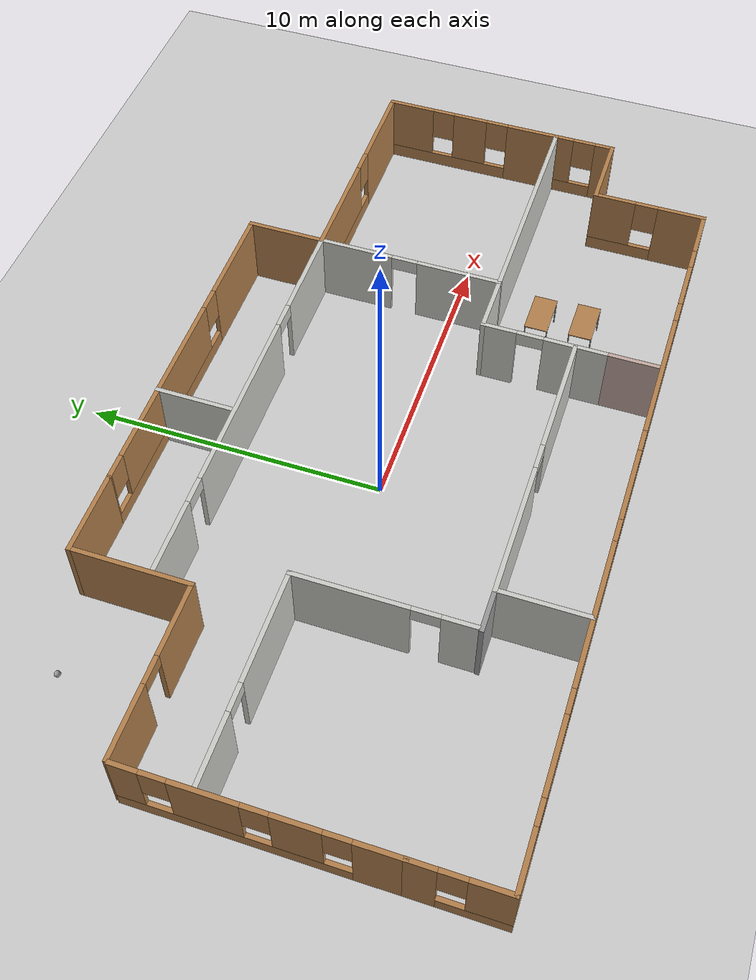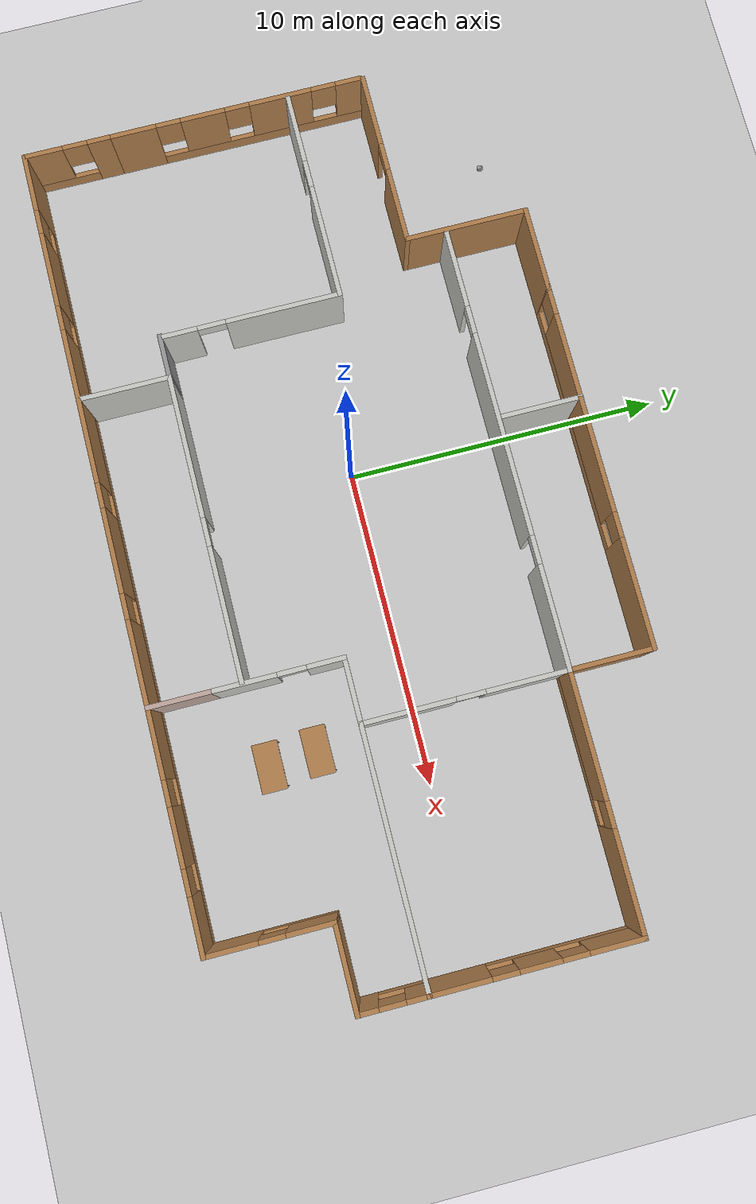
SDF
<sdf version="1.6">
 <world name="default">
  <plugin name="welcome" filename="libwelcome.so"/>
  <light name="sun" type="directional">
   <pose>0 0 10 0 -0 0</pose>
   <diffuse>0.8 0.8 0.8 1</diffuse>
   <specular>0.2 0.2 0.2 1</specular>
   <attenuation>
    <range>1000</range>
    <constant>0.9</constant>
    <linear>0.01</linear>
    <quadratic>0.001</quadratic>
   </attenuation>
   <direction>-0.5 0.1 -0.9</direction>
  </light>
  <model name="ground_plane">
   <static>1</static>
   <link name="link">
    <collision name="collision">
     <geometry><plane><normal>0 0 1</normal><size>100 100</size></plane></geometry>
     <surface>
      <contact><collide_bitmask>65535</collide_bitmask></contact>
      <friction><ode><mu>100</mu><mu2>50</mu2></ode></friction>
     </surface>
    </collision>
    <visual name="visual">
     <cast_shadows>0</cast_shadows>
     <geometry><plane><normal>0 0 1</normal><size>100 100</size></plane></geometry>
     <material>
      <script><uri>file://media/materials/scripts/gazebo.material</uri><name>Gazebo/Grey</name></script>
     </material>
    </visual>
   </link>
  </model>
  <gravity>0 0 -9.8</gravity>
  <magnetic_field>6e-06 2.3e-05 -4.2e-05</magnetic_field>
  <atmosphere type="adiabatic"/>
  <physics name="default_physics" default="0" type="ode">
   <max_step_size>0.001</max_step_size>
   <real_time_factor>1</real_time_factor>
   <real_time_update_rate>1000</real_time_update_rate>
  </physics>
  <scene><ambient>0.4 0.4 0.4 1</ambient><background>0.7 0.7 0.7 1</background><shadows>1</shadows></scene>
  <spherical_coordinates>
   <surface_model>EARTH_WGS84</surface_model>
   <latitude_deg>0</latitude_deg>
   <longitude_deg>0</longitude_deg>
   <elevation>0</elevation>
   <heading_deg>0</heading_deg>
  </spherical_coordinates>
  <model name="Building">
   <pose>1.74044 -0.12479 0 0 -0 0</pose>
   <link name="Wall_10">
    <pose>-1.3 -7.4566 0 0 -0 0</pose>
    <visual name="Wall_10_Visual_0">
     <pose>-11.6648 0 1.25 0 -0 0</pose>
     <geometry><box><size>1.92035 0.15 2.5</size></box></geometry>
     <material>
      <script><uri>file://media/materials/scripts/gazebo.material</uri><name>Gazebo/Wood</name></script>
      <ambient>1 1 1 1</ambient>
     </material>
     <meta><layer>0</layer></meta>
    </visual>
    <collision name="Wall_10_Collision_0">
     <geometry><box><size>1.92035 0.15 2.5</size></box></geometry>
     <pose>-11.6648 0 1.25 0 -0 0</pose>
    </collision>
    <visual name="Wall_10_Visual_1">
     <pose>0.960175 0 0.25 0 -0 0</pose>
     <geometry><box><size>23.3296 0.15 0.5</size></box></geometry>
     <material>
      <script><uri>file://media/materials/scripts/gazebo.material</uri><name>Gazebo/Wood</name></script>
      <ambient>1 1 1 1</ambient>
     </material>
     <meta><layer>0</layer></meta>
    </visual>
    <collision name="Wall_10_Collision_1">
     <geometry><box><size>23.3296 0.15 0.5</size></box></geometry>
     <pose>0.960175 0 0.25 0 -0 0</pose>
    </collision>
    <visual name="Wall_10_Visual_2">
     <pose>-8.67573 0 1.5 0 -0 0</pose>
     <geometry><box><size>2.45784 0.15 2</size></box></geometry>
     <material>
      <script><uri>file://media/materials/scripts/gazebo.material</uri><name>Gazebo/Wood</name></script>
      <ambient>1 1 1 1</ambient>
     </material>
     <meta><layer>0</layer></meta>
    </visual>
    <collision name="Wall_10_Collision_2">
     <geometry><box><size>2.45784 0.15 2</size></box></geometry>
     <pose>-8.67573 0 1.5 0 -0 0</pose>
    </collision>
    <visual name="Wall_10_Visual_3">
     <pose>-4.15423 0 1.5 0 -0 0</pose>
     <geometry><box><size>4.98515 0.15 2</size></box></geometry>
     <material>
      <script><uri>file://media/materials/scripts/gazebo.material</uri><name>Gazebo/Wood</name></script>
      <ambient>1 1 1 1</ambient>
     </material>
     <meta><layer>0</layer></meta>
    </visual>
    <collision name="Wall_10_Collision_3">
     <geometry><box><size>4.98515 0.15 2</size></box></geometry>
     <pose>-4.15423 0 1.5 0 -0 0</pose>
    </collision>
    <visual name="Wall_10_Visual_4">
     <pose>0.477931 0 1.5 0 -0 0</pose>
     <geometry><box><size>2.67918 0.15 2</size></box></geometry>
     <material>
      <script><uri>file://media/materials/scripts/gazebo.material</uri><name>Gazebo/Wood</name></script>
      <ambient>1 1 1 1</ambient>
     </material>
     <meta><layer>0</layer></meta>
    </visual>
    <collision name="Wall_10_Collision_4">
     <geometry><box><size>2.67918 0.15 2</size></box></geometry>
     <pose>0.477931 0 1.5 0 -0 0</pose>
    </collision>
    <visual name="Wall_10_Visual_5">
     <pose>5.02918 0 1.5 0 -0 0</pose>
     <geometry><box><size>4.82332 0.15 2</size></box></geometry>
     <material>
      <script><uri>file://media/materials/scripts/gazebo.material</uri><name>Gazebo/Wood</name></script>
      <ambient>1 1 1 1</ambient>
     </material>
     <meta><layer>0</layer></meta>
    </visual>
    <collision name="Wall_10_Collision_5">
     <geometry><box><size>4.82332 0.15 2</size></box></geometry>
     <pose>5.02918 0 1.5 0 -0 0</pose>
    </collision>
    <visual name="Wall_10_Visual_6">
     <pose>9.13542 0 1.5 0 -0 0</pose>
     <geometry><box><size>1.78916 0.15 2</size></box></geometry>
     <material>
      <script><uri>file://media/materials/scripts/gazebo.material</uri><name>Gazebo/Wood</name></script>
      <ambient>1 1 1 1</ambient>
     </material>
     <meta><layer>0</layer></meta>
    </visual>
    <collision name="Wall_10_Collision_6">
     <geometry><box><size>1.78916 0.15 2</size></box></geometry>
     <pose>9.13542 0 1.5 0 -0 0</pose>
    </collision>
    <visual name="Wall_10_Visual_7">
     <pose>11.7275 0 1.5 0 -0 0</pose>
     <geometry><box><size>1.795 0.15 2</size></box></geometry>
     <material>
      <script><uri>file://media/materials/scripts/gazebo.material</uri><name>Gazebo/Wood</name></script>
      <ambient>1 1 1 1</ambient>
     </material>
     <meta><layer>0</layer></meta>
    </visual>
    <collision name="Wall_10_Collision_7">
     <geometry><box><size>1.795 0.15 2</size></box></geometry>
     <pose>11.7275 0 1.5 0 -0 0</pose>
    </collision>
    <visual name="Wall_10_Visual_8">
     <pose>-10.3046 0 1.9 0 -0 0</pose>
     <geometry><box><size>0.8 0.15 1.2</size></box></geometry>
     <material>
      <script><uri>file://media/materials/scripts/gazebo.material</uri><name>Gazebo/Wood</name></script>
      <ambient>1 1 1 1</ambient>
     </material>
     <meta><layer>0</layer></meta>
    </visual>
    <collision name="Wall_10_Collision_8">
     <geometry><box><size>0.8 0.15 1.2</size></box></geometry>
     <pose>-10.3046 0 1.9 0 -0 0</pose>
    </collision>
    <visual name="Wall_10_Visual_9">
     <pose>-7.04681 0 1.9 0 -0 0</pose>
     <geometry><box><size>0.8 0.15 1.2</size></box></geometry>
     <material>
      <script><uri>file://media/materials/scripts/gazebo.material</uri><name>Gazebo/Wood</name></script>
      <ambient>1 1 1 1</ambient>
     </material>
     <meta><layer>0</layer></meta>
    </visual>
    <collision name="Wall_10_Collision_9">
     <geometry><box><size>0.8 0.15 1.2</size></box></geometry>
     <pose>-7.04681 0 1.9 0 -0 0</pose>
    </collision>
    <visual name="Wall_10_Visual_10">
     <pose>-1.26166 0 1.9 0 -0 0</pose>
     <geometry><box><size>0.8 0.15 1.2</size></box></geometry>
     <material>
      <script><uri>file://media/materials/scripts/gazebo.material</uri><name>Gazebo/Wood</name></script>
      <ambient>1 1 1 1</ambient>
     </material>
     <meta><layer>0</layer></meta>
    </visual>
    <collision name="Wall_10_Collision_10">
     <geometry><box><size>0.8 0.15 1.2</size></box></geometry>
     <pose>-1.26166 0 1.9 0 -0 0</pose>
    </collision>
    <visual name="Wall_10_Visual_11">
     <pose>2.21752 0 1.9 0 -0 0</pose>
     <geometry><box><size>0.8 0.15 1.2</size></box></geometry>
     <material>
      <script><uri>file://media/materials/scripts/gazebo.material</uri><name>Gazebo/Wood</name></script>
      <ambient>1 1 1 1</ambient>
     </material>
     <meta><layer>0</layer></meta>
    </visual>
    <collision name="Wall_10_Collision_11">
     <geometry><box><size>0.8 0.15 1.2</size></box></geometry>
     <pose>2.21752 0 1.9 0 -0 0</pose>
    </collision>
    <visual name="Wall_10_Visual_12">
     <pose>7.84085 0 1.9 0 -0 0</pose>
     <geometry><box><size>0.8 0.15 1.2</size></box></geometry>
     <material>
      <script><uri>file://media/materials/scripts/gazebo.material</uri><name>Gazebo/Wood</name></script>
      <ambient>1 1 1 1</ambient>
     </material>
     <meta><layer>0</layer></meta>
    </visual>
    <collision name="Wall_10_Collision_12">
     <geometry><box><size>0.8 0.15 1.2</size></box></geometry>
     <pose>7.84085 0 1.9 0 -0 0</pose>
    </collision>
    <visual name="Wall_10_Visual_13">
     <pose>10.43 0 1.9 0 -0 0</pose>
     <geometry><box><size>0.8 0.15 1.2</size></box></geometry>
     <material>
      <script><uri>file://media/materials/scripts/gazebo.material</uri><name>Gazebo/Wood</name></script>
      <ambient>1 1 1 1</ambient>
     </material>
     <meta><layer>0</layer></meta>
    </visual>
    <collision name="Wall_10_Collision_13">
     <geometry><box><size>0.8 0.15 1.2</size></box></geometry>
     <pose>10.43 0 1.9 0 -0 0</pose>
    </collision>
   </link>
   <link name="Wall_11">
    <pose>11.25 -5.5316 0 0 -0 1.5708</pose>
    <visual name="Wall_11_Visual_0">
     <pose>-1.15767 0 1.25 0 -0 0</pose>
     <geometry><box><size>1.68466 0.15 2.5</size></box></geometry>
     <material>
      <script><uri>file://media/materials/scripts/gazebo.material</uri><name>Gazebo/Wood</name></script>
      <ambient>1 1 1 1</ambient>
     </material>
     <meta><layer>0</layer></meta>
    </visual>
    <collision name="Wall_11_Collision_0">
     <geometry><box><size>1.68466 0.15 2.5</size></box></geometry>
     <pose>-1.15767 0 1.25 0 -0 0</pose>
    </collision>
    <visual name="Wall_11_Visual_1">
     <pose>0.842329 0 0.25 0 -0 0</pose>
     <geometry><box><size>2.31534 0.15 0.5</size></box></geometry>
     <material>
      <script><uri>file://media/materials/scripts/gazebo.material</uri><name>Gazebo/Wood</name></script>
      <ambient>1 1 1 1</ambient>
     </material>
     <meta><layer>0</layer></meta>
    </visual>
    <collision name="Wall_11_Collision_1">
     <geometry><box><size>2.31534 0.15 0.5</size></box></geometry>
     <pose>0.842329 0 0.25 0 -0 0</pose>
    </collision>
    <visual name="Wall_11_Visual_2">
     <pose>1.24233 0 1.5 0 -0 0</pose>
     <geometry><box><size>1.51534 0.15 2</size></box></geometry>
     <material>
      <script><uri>file://media/materials/scripts/gazebo.material</uri><name>Gazebo/Wood</name></script>
      <ambient>1 1 1 1</ambient>
     </material>
     <meta><layer>0</layer></meta>
    </visual>
    <collision name="Wall_11_Collision_2">
     <geometry><box><size>1.51534 0.15 2</size></box></geometry>
     <pose>1.24233 0 1.5 0 -0 0</pose>
    </collision>
    <visual name="Wall_11_Visual_3">
     <pose>0.084657 0 1.9 0 -0 0</pose>
     <geometry><box><size>0.8 0.15 1.2</size></box></geometry>
     <material>
      <script><uri>file://media/materials/scripts/gazebo.material</uri><name>Gazebo/Wood</name></script>
      <ambient>1 1 1 1</ambient>
     </material>
     <meta><layer>0</layer></meta>
    </visual>
    <collision name="Wall_11_Collision_3">
     <geometry><box><size>0.8 0.15 1.2</size></box></geometry>
     <pose>0.084657 0 1.9 0 -0 0</pose>
    </collision>
   </link>
   <link name="Wall_12">
    <collision name="Wall_12_Collision">
     <geometry><box><size>2.75 0.15 2.5</size></box></geometry>
     <pose>0 0 1.25 0 -0 0</pose>
    </collision>
    <visual name="Wall_12_Visual">
     <pose>0 0 1.25 0 -0 0</pose>
     <geometry><box><size>2.75 0.15 2.5</size></box></geometry>
     <material>
      <script><uri>file://media/materials/scripts/gazebo.material</uri><name>Gazebo/Wood</name></script>
      <ambient>1 1 1 1</ambient>
     </material>
     <meta><layer>0</layer></meta>
    </visual>
    <pose>12.55 -3.6066 0 0 -0 0</pose>
   </link>
   <link name="Wall_13">
    <pose>13.85 -2.5566 0 0 -0 1.5708</pose>
    <visual name="Wall_13_Visual_0">
     <pose>-0.771499 0 1.25 0 -0 0</pose>
     <geometry><box><size>0.707003 0.15 2.5</size></box></geometry>
     <material>
      <script><uri>file://media/materials/scripts/gazebo.material</uri><name>Gazebo/Wood</name></script>
      <ambient>1 1 1 1</ambient>
     </material>
     <meta><layer>0</layer></meta>
    </visual>
    <collision name="Wall_13_Collision_0">
     <geometry><box><size>0.707003 0.15 2.5</size></box></geometry>
     <pose>-0.771499 0 1.25 0 -0 0</pose>
    </collision>
    <visual name="Wall_13_Visual_1">
     <pose>0.353501 0 0.25 0 -0 0</pose>
     <geometry><box><size>1.543 0.15 0.5</size></box></geometry>
     <material>
      <script><uri>file://media/materials/scripts/gazebo.material</uri><name>Gazebo/Wood</name></script>
      <ambient>1 1 1 1</ambient>
     </material>
     <meta><layer>0</layer></meta>
    </visual>
    <collision name="Wall_13_Collision_1">
     <geometry><box><size>1.543 0.15 0.5</size></box></geometry>
     <pose>0.353501 0 0.25 0 -0 0</pose>
    </collision>
    <visual name="Wall_13_Visual_2">
     <pose>0.753501 0 1.5 0 -0 0</pose>
     <geometry><box><size>0.742997 0.15 2</size></box></geometry>
     <material>
      <script><uri>file://media/materials/scripts/gazebo.material</uri><name>Gazebo/Wood</name></script>
      <ambient>1 1 1 1</ambient>
     </material>
     <meta><layer>0</layer></meta>
    </visual>
    <collision name="Wall_13_Collision_2">
     <geometry><box><size>0.742997 0.15 2</size></box></geometry>
     <pose>0.753501 0 1.5 0 -0 0</pose>
    </collision>
    <visual name="Wall_13_Visual_3">
     <pose>-0.017997 0 1.9 0 -0 0</pose>
     <geometry><box><size>0.8 0.15 1.2</size></box></geometry>
     <material>
      <script><uri>file://media/materials/scripts/gazebo.material</uri><name>Gazebo/Wood</name></script>
      <ambient>1 1 1 1</ambient>
     </material>
     <meta><layer>0</layer></meta>
    </visual>
    <collision name="Wall_13_Collision_3">
     <geometry><box><size>0.8 0.15 1.2</size></box></geometry>
     <pose>-0.017997 0 1.9 0 -0 0</pose>
    </collision>
   </link>
   <link name="Wall_14">
    <collision name="Wall_14_Collision">
     <geometry><box><size>10 0.15 2.5</size></box></geometry>
     <pose>0 0 1.25 0 -0 0</pose>
    </collision>
    <visual name="Wall_14_Visual">
     <pose>0 0 1.25 0 -0 0</pose>
     <geometry><box><size>10 0.15 2.5</size></box></geometry>
     <material>
      <script><uri>file://media/materials/scripts/gazebo.material</uri><name>Gazebo/CeilingTiled</name></script>
      <ambient>0.760784 0.662745 0.627451 1</ambient>
     </material>
     <meta><layer>0</layer></meta>
    </visual>
    <pose>8.925 -1.5066 0 0 -0 3.14159</pose>
   </link>
   <link name="Wall_15">
    <pose>4 -3.5566 0 0 0 -1.5708</pose>
    <visual name="Wall_15_Visual_0">
     <pose>-1.51554 0 1.25 0 -0 0</pose>
     <geometry><box><size>1.21892 0.15 2.5</size></box></geometry>
     <material>
      <script><uri>file://media/materials/scripts/gazebo.material</uri><name>Gazebo/CeilingTiled</name></script>
      <ambient>0.760784 0.662745 0.627451 1</ambient>
     </material>
     <meta><layer>0</layer></meta>
    </visual>
    <collision name="Wall_15_Collision_0">
     <geometry><box><size>1.21892 0.15 2.5</size></box></geometry>
     <pose>-1.51554 0 1.25 0 -0 0</pose>
    </collision>
    <visual name="Wall_15_Visual_1">
     <pose>1.05946 0 1.25 0 -0 0</pose>
     <geometry><box><size>2.13108 0.15 2.5</size></box></geometry>
     <material>
      <script><uri>file://media/materials/scripts/gazebo.material</uri><name>Gazebo/CeilingTiled</name></script>
      <ambient>0.760784 0.662745 0.627451 1</ambient>
     </material>
     <meta><layer>0</layer></meta>
    </visual>
    <collision name="Wall_15_Collision_1">
     <geometry><box><size>2.13108 0.15 2.5</size></box></geometry>
     <pose>1.05946 0 1.25 0 -0 0</pose>
    </collision>
    <visual name="Wall_15_Visual_2">
     <pose>-0.45608 0 2.25 0 -0 0</pose>
     <geometry><box><size>0.9 0.15 0.5</size></box></geometry>
     <material>
      <script><uri>file://media/materials/scripts/gazebo.material</uri><name>Gazebo/CeilingTiled</name></script>
      <ambient>0.760784 0.662745 0.627451 1</ambient>
     </material>
     <meta><layer>0</layer></meta>
    </visual>
    <collision name="Wall_15_Collision_2">
     <geometry><box><size>0.9 0.15 0.5</size></box></geometry>
     <pose>-0.45608 0 2.25 0 -0 0</pose>
    </collision>
   </link>
   <link name="Wall_22">
    <pose>13.85 1.6684 0 0 -0 1.5708</pose>
    <visual name="Wall_22_Visual_0">
     <pose>-2.28782 0 1.25 0 -0 0</pose>
     <geometry><box><size>1.92436 0.15 2.5</size></box></geometry>
     <material>
      <script><uri>file://media/materials/scripts/gazebo.material</uri><name>Gazebo/Wood</name></script>
      <ambient>1 1 1 1</ambient>
     </material>
     <meta><layer>0</layer></meta>
    </visual>
    <collision name="Wall_22_Collision_0">
     <geometry><box><size>1.92436 0.15 2.5</size></box></geometry>
     <pose>-2.28782 0 1.25 0 -0 0</pose>
    </collision>
    <visual name="Wall_22_Visual_1">
     <pose>0.96218 0 0.25 0 -0 0</pose>
     <geometry><box><size>4.57564 0.15 0.5</size></box></geometry>
     <material>
      <script><uri>file://media/materials/scripts/gazebo.material</uri><name>Gazebo/Wood</name></script>
      <ambient>1 1 1 1</ambient>
     </material>
     <meta><layer>0</layer></meta>
    </visual>
    <collision name="Wall_22_Collision_1">
     <geometry><box><size>4.57564 0.15 0.5</size></box></geometry>
     <pose>0.96218 0 0.25 0 -0 0</pose>
    </collision>
    <visual name="Wall_22_Visual_2">
     <pose>0.105977 0 1.5 0 -0 0</pose>
     <geometry><box><size>1.26323 0.15 2</size></box></geometry>
     <material>
      <script><uri>file://media/materials/scripts/gazebo.material</uri><name>Gazebo/Wood</name></script>
      <ambient>1 1 1 1</ambient>
     </material>
     <meta><layer>0</layer></meta>
    </visual>
    <collision name="Wall_22_Collision_2">
     <geometry><box><size>1.26323 0.15 2</size></box></geometry>
     <pose>0.105977 0 1.5 0 -0 0</pose>
    </collision>
    <visual name="Wall_22_Visual_3">
     <pose>2.3938 0 1.5 0 -0 0</pose>
     <geometry><box><size>1.7124 0.15 2</size></box></geometry>
     <material>
      <script><uri>file://media/materials/scripts/gazebo.material</uri><name>Gazebo/Wood</name></script>
      <ambient>1 1 1 1</ambient>
     </material>
     <meta><layer>0</layer></meta>
    </visual>
    <collision name="Wall_22_Collision_3">
     <geometry><box><size>1.7124 0.15 2</size></box></geometry>
     <pose>2.3938 0 1.5 0 -0 0</pose>
    </collision>
    <visual name="Wall_22_Visual_4">
     <pose>-0.92564 0 1.9 0 -0 0</pose>
     <geometry><box><size>0.8 0.15 1.2</size></box></geometry>
     <material>
      <script><uri>file://media/materials/scripts/gazebo.material</uri><name>Gazebo/Wood</name></script>
      <ambient>1 1 1 1</ambient>
     </material>
     <meta><layer>0</layer></meta>
    </visual>
    <collision name="Wall_22_Collision_4">
     <geometry><box><size>0.8 0.15 1.2</size></box></geometry>
     <pose>-0.92564 0 1.9 0 -0 0</pose>
    </collision>
    <visual name="Wall_22_Visual_5">
     <pose>1.13759 0 1.9 0 -0 0</pose>
     <geometry><box><size>0.8 0.15 1.2</size></box></geometry>
     <material>
      <script><uri>file://media/materials/scripts/gazebo.material</uri><name>Gazebo/Wood</name></script>
      <ambient>1 1 1 1</ambient>
     </material>
     <meta><layer>0</layer></meta>
    </visual>
    <collision name="Wall_22_Collision_5">
     <geometry><box><size>0.8 0.15 1.2</size></box></geometry>
     <pose>1.13759 0 1.9 0 -0 0</pose>
    </collision>
   </link>
   <link name="Wall_23">
    <pose>9.925 4.8434 0 0 -0 3.14159</pose>
    <visual name="Wall_23_Visual_0">
     <pose>-2.38911 0 1.25 0 -0 0</pose>
     <geometry><box><size>3.22179 0.15 2.5</size></box></geometry>
     <material>
      <script><uri>file://media/materials/scripts/gazebo.material</uri><name>Gazebo/Wood</name></script>
      <ambient>1 1 1 1</ambient>
     </material>
     <meta><layer>0</layer></meta>
    </visual>
    <collision name="Wall_23_Collision_0">
     <geometry><box><size>3.22179 0.15 2.5</size></box></geometry>
     <pose>-2.38911 0 1.25 0 -0 0</pose>
    </collision>
    <visual name="Wall_23_Visual_1">
     <pose>1.61089 0 0.25 0 -0 0</pose>
     <geometry><box><size>4.77822 0.15 0.5</size></box></geometry>
     <material>
      <script><uri>file://media/materials/scripts/gazebo.material</uri><name>Gazebo/Wood</name></script>
      <ambient>1 1 1 1</ambient>
     </material>
     <meta><layer>0</layer></meta>
    </visual>
    <collision name="Wall_23_Collision_1">
     <geometry><box><size>4.77822 0.15 0.5</size></box></geometry>
     <pose>1.61089 0 0.25 0 -0 0</pose>
    </collision>
    <visual name="Wall_23_Visual_2">
     <pose>2.01089 0 1.5 0 -0 0</pose>
     <geometry><box><size>3.97822 0.15 2</size></box></geometry>
     <material>
      <script><uri>file://media/materials/scripts/gazebo.material</uri><name>Gazebo/Wood</name></script>
      <ambient>1 1 1 1</ambient>
     </material>
     <meta><layer>0</layer></meta>
    </visual>
    <collision name="Wall_23_Collision_2">
     <geometry><box><size>3.97822 0.15 2</size></box></geometry>
     <pose>2.01089 0 1.5 0 -0 0</pose>
    </collision>
    <visual name="Wall_23_Visual_3">
     <pose>-0.378215 0 1.9 0 -0 0</pose>
     <geometry><box><size>0.8 0.15 1.2</size></box></geometry>
     <material>
      <script><uri>file://media/materials/scripts/gazebo.material</uri><name>Gazebo/Wood</name></script>
      <ambient>1 1 1 1</ambient>
     </material>
     <meta><layer>0</layer></meta>
    </visual>
    <collision name="Wall_23_Collision_3">
     <geometry><box><size>0.8 0.15 1.2</size></box></geometry>
     <pose>-0.378215 0 1.9 0 -0 0</pose>
    </collision>
   </link>
   <link name="Wall_24">
    <pose>6 1.6684 0 0 0 -1.5708</pose>
    <visual name="Wall_24_Visual_0">
     <pose>-1.93333 0 1.25 0 -0 0</pose>
     <geometry><box><size>2.63334 0.15 2.5</size></box></geometry>
     <material>
      <script><uri>file://media/materials/scripts/gazebo.material</uri><name>Gazebo/CeilingTiled</name></script>
      <ambient>0.760784 0.662745 0.627451 1</ambient>
     </material>
     <meta><layer>0</layer></meta>
    </visual>
    <collision name="Wall_24_Collision_0">
     <geometry><box><size>2.63334 0.15 2.5</size></box></geometry>
     <pose>-1.93333 0 1.25 0 -0 0</pose>
    </collision>
    <visual name="Wall_24_Visual_1">
     <pose>1.76667 0 1.25 0 -0 0</pose>
     <geometry><box><size>2.96666 0.15 2.5</size></box></geometry>
     <material>
      <script><uri>file://media/materials/scripts/gazebo.material</uri><name>Gazebo/CeilingTiled</name></script>
      <ambient>0.760784 0.662745 0.627451 1</ambient>
     </material>
     <meta><layer>0</layer></meta>
    </visual>
    <collision name="Wall_24_Collision_1">
     <geometry><box><size>2.96666 0.15 2.5</size></box></geometry>
     <pose>1.76667 0 1.25 0 -0 0</pose>
    </collision>
    <visual name="Wall_24_Visual_2">
     <pose>-0.166661 0 2.25 0 -0 0</pose>
     <geometry><box><size>0.9 0.15 0.5</size></box></geometry>
     <material>
      <script><uri>file://media/materials/scripts/gazebo.material</uri><name>Gazebo/CeilingTiled</name></script>
      <ambient>0.760784 0.662745 0.627451 1</ambient>
     </material>
     <meta><layer>0</layer></meta>
    </visual>
    <collision name="Wall_24_Collision_2">
     <geometry><box><size>0.9 0.15 0.5</size></box></geometry>
     <pose>-0.166661 0 2.25 0 -0 0</pose>
    </collision>
   </link>
   <link name="Wall_26">
    <collision name="Wall_26_Collision">
     <geometry><box><size>2.75 0.15 2.5</size></box></geometry>
     <pose>0 0 1.25 0 -0 0</pose>
    </collision>
    <visual name="Wall_26_Visual">
     <pose>0 0 1.25 0 -0 0</pose>
     <geometry><box><size>2.75 0.15 2.5</size></box></geometry>
     <material>
      <script><uri>file://media/materials/scripts/gazebo.material</uri><name>Gazebo/Wood</name></script>
      <ambient>1 1 1 1</ambient>
     </material>
     <meta><layer>0</layer></meta>
    </visual>
    <pose>6 6.1434 0 0 -0 1.5708</pose>
   </link>
   <link name="Wall_27">
    <pose>0.2 7.4434 0 0 -0 3.14159</pose>
    <visual name="Wall_27_Visual_0">
     <pose>-4.12332 0 1.25 0 -0 0</pose>
     <geometry><box><size>3.50336 0.15 2.5</size></box></geometry>
     <material>
      <script><uri>file://media/materials/scripts/gazebo.material</uri><name>Gazebo/Wood</name></script>
      <ambient>1 1 1 1</ambient>
     </material>
     <meta><layer>0</layer></meta>
    </visual>
    <collision name="Wall_27_Collision_0">
     <geometry><box><size>3.50336 0.15 2.5</size></box></geometry>
     <pose>-4.12332 0 1.25 0 -0 0</pose>
    </collision>
    <visual name="Wall_27_Visual_1">
     <pose>1.75168 0 0.25 0 -0 0</pose>
     <geometry><box><size>8.24664 0.15 0.5</size></box></geometry>
     <material>
      <script><uri>file://media/materials/scripts/gazebo.material</uri><name>Gazebo/Wood</name></script>
      <ambient>1 1 1 1</ambient>
     </material>
     <meta><layer>0</layer></meta>
    </visual>
    <collision name="Wall_27_Collision_1">
     <geometry><box><size>8.24664 0.15 0.5</size></box></geometry>
     <pose>1.75168 0 0.25 0 -0 0</pose>
    </collision>
    <visual name="Wall_27_Visual_2">
     <pose>1.64913 0 1.5 0 -0 0</pose>
     <geometry><box><size>6.44155 0.15 2</size></box></geometry>
     <material>
      <script><uri>file://media/materials/scripts/gazebo.material</uri><name>Gazebo/Wood</name></script>
      <ambient>1 1 1 1</ambient>
     </material>
     <meta><layer>0</layer></meta>
    </visual>
    <collision name="Wall_27_Collision_2">
     <geometry><box><size>6.44155 0.15 2</size></box></geometry>
     <pose>1.64913 0 1.5 0 -0 0</pose>
    </collision>
    <visual name="Wall_27_Visual_3">
     <pose>5.77245 0 1.5 0 -0 0</pose>
     <geometry><box><size>0.205095 0.15 2</size></box></geometry>
     <material>
      <script><uri>file://media/materials/scripts/gazebo.material</uri><name>Gazebo/Wood</name></script>
      <ambient>1 1 1 1</ambient>
     </material>
     <meta><layer>0</layer></meta>
    </visual>
    <collision name="Wall_27_Collision_3">
     <geometry><box><size>0.205095 0.15 2</size></box></geometry>
     <pose>5.77245 0 1.5 0 -0 0</pose>
    </collision>
    <visual name="Wall_27_Visual_4">
     <pose>-1.97164 0 1.9 0 -0 0</pose>
     <geometry><box><size>0.8 0.15 1.2</size></box></geometry>
     <material>
      <script><uri>file://media/materials/scripts/gazebo.material</uri><name>Gazebo/Wood</name></script>
      <ambient>1 1 1 1</ambient>
     </material>
     <meta><layer>0</layer></meta>
    </visual>
    <collision name="Wall_27_Collision_4">
     <geometry><box><size>0.8 0.15 1.2</size></box></geometry>
     <pose>-1.97164 0 1.9 0 -0 0</pose>
    </collision>
    <visual name="Wall_27_Visual_5">
     <pose>5.2699 0 1.9 0 -0 0</pose>
     <geometry><box><size>0.8 0.15 1.2</size></box></geometry>
     <material>
      <script><uri>file://media/materials/scripts/gazebo.material</uri><name>Gazebo/Wood</name></script>
      <ambient>1 1 1 1</ambient>
     </material>
     <meta><layer>0</layer></meta>
    </visual>
    <collision name="Wall_27_Collision_5">
     <geometry><box><size>0.8 0.15 1.2</size></box></geometry>
     <pose>5.2699 0 1.9 0 -0 0</pose>
    </collision>
   </link>
   <link name="Wall_30">
    <collision name="Wall_30_Collision">
     <geometry><box><size>3 0.15 2.5</size></box></geometry>
     <pose>0 0 1.25 0 -0 0</pose>
    </collision>
    <visual name="Wall_30_Visual">
     <pose>0 0 1.25 0 -0 0</pose>
     <geometry><box><size>3 0.15 2.5</size></box></geometry>
     <material>
      <script><uri>file://media/materials/scripts/gazebo.material</uri><name>Gazebo/CeilingTiled</name></script>
      <ambient>0.760784 0.662745 0.627451 1</ambient>
     </material>
     <meta><layer>0</layer></meta>
    </visual>
    <pose>-5.65 -6.0316 0 0 0 -1.5708</pose>
   </link>
   <link name="Wall_32">
    <pose>-13.85 -0.556603 0 0 -0 1.5708</pose>
    <visual name="Wall_32_Visual_0">
     <pose>-3.38161 0 1.25 0 -0 0</pose>
     <geometry><box><size>1.48677 0.15 2.5</size></box></geometry>
     <material>
      <script><uri>file://media/materials/scripts/gazebo.material</uri><name>Gazebo/Wood</name></script>
      <ambient>1 1 1 1</ambient>
     </material>
     <meta><layer>0</layer></meta>
    </visual>
    <collision name="Wall_32_Collision_0">
     <geometry><box><size>1.48677 0.15 2.5</size></box></geometry>
     <pose>-3.38161 0 1.25 0 -0 0</pose>
    </collision>
    <visual name="Wall_32_Visual_1">
     <pose>0.743388 0 0.25 0 -0 0</pose>
     <geometry><box><size>6.76323 0.15 0.5</size></box></geometry>
     <material>
      <script><uri>file://media/materials/scripts/gazebo.material</uri><name>Gazebo/Wood</name></script>
      <ambient>1 1 1 1</ambient>
     </material>
     <meta><layer>0</layer></meta>
    </visual>
    <collision name="Wall_32_Collision_1">
     <geometry><box><size>6.76323 0.15 0.5</size></box></geometry>
     <pose>0.743388 0 0.25 0 -0 0</pose>
    </collision>
    <visual name="Wall_32_Visual_2">
     <pose>-1.11534 0 1.5 0 -0 0</pose>
     <geometry><box><size>1.44577 0.15 2</size></box></geometry>
     <material>
      <script><uri>file://media/materials/scripts/gazebo.material</uri><name>Gazebo/Wood</name></script>
      <ambient>1 1 1 1</ambient>
     </material>
     <meta><layer>0</layer></meta>
    </visual>
    <collision name="Wall_32_Collision_2">
     <geometry><box><size>1.44577 0.15 2</size></box></geometry>
     <pose>-1.11534 0 1.5 0 -0 0</pose>
    </collision>
    <visual name="Wall_32_Visual_3">
     <pose>1.42268 0 1.5 0 -0 0</pose>
     <geometry><box><size>2.03028 0.15 2</size></box></geometry>
     <material>
      <script><uri>file://media/materials/scripts/gazebo.material</uri><name>Gazebo/Wood</name></script>
      <ambient>1 1 1 1</ambient>
     </material>
     <meta><layer>0</layer></meta>
    </visual>
    <collision name="Wall_32_Collision_3">
     <geometry><box><size>2.03028 0.15 2</size></box></geometry>
     <pose>1.42268 0 1.5 0 -0 0</pose>
    </collision>
    <visual name="Wall_32_Visual_4">
     <pose>3.68141 0 1.5 0 -0 0</pose>
     <geometry><box><size>0.887175 0.15 2</size></box></geometry>
     <material>
      <script><uri>file://media/materials/scripts/gazebo.material</uri><name>Gazebo/Wood</name></script>
      <ambient>1 1 1 1</ambient>
     </material>
     <meta><layer>0</layer></meta>
    </visual>
    <collision name="Wall_32_Collision_4">
     <geometry><box><size>0.887175 0.15 2</size></box></geometry>
     <pose>3.68141 0 1.5 0 -0 0</pose>
    </collision>
    <visual name="Wall_32_Visual_5">
     <pose>-2.23822 0 1.9 0 -0 0</pose>
     <geometry><box><size>0.8 0.15 1.2</size></box></geometry>
     <material>
      <script><uri>file://media/materials/scripts/gazebo.material</uri><name>Gazebo/Wood</name></script>
      <ambient>1 1 1 1</ambient>
     </material>
     <meta><layer>0</layer></meta>
    </visual>
    <collision name="Wall_32_Collision_5">
     <geometry><box><size>0.8 0.15 1.2</size></box></geometry>
     <pose>-2.23822 0 1.9 0 -0 0</pose>
    </collision>
    <visual name="Wall_32_Visual_6">
     <pose>0.007543 0 1.9 0 -0 0</pose>
     <geometry><box><size>0.8 0.15 1.2</size></box></geometry>
     <material>
      <script><uri>file://media/materials/scripts/gazebo.material</uri><name>Gazebo/Wood</name></script>
      <ambient>1 1 1 1</ambient>
     </material>
     <meta><layer>0</layer></meta>
    </visual>
    <collision name="Wall_32_Collision_6">
     <geometry><box><size>0.8 0.15 1.2</size></box></geometry>
     <pose>0.007543 0 1.9 0 -0 0</pose>
    </collision>
    <visual name="Wall_32_Visual_7">
     <pose>2.83783 0 1.9 0 -0 0</pose>
     <geometry><box><size>0.8 0.15 1.2</size></box></geometry>
     <material>
      <script><uri>file://media/materials/scripts/gazebo.material</uri><name>Gazebo/Wood</name></script>
      <ambient>1 1 1 1</ambient>
     </material>
     <meta><layer>0</layer></meta>
    </visual>
    <collision name="Wall_32_Collision_7">
     <geometry><box><size>0.8 0.15 1.2</size></box></geometry>
     <pose>2.83783 0 1.9 0 -0 0</pose>
    </collision>
   </link>
   <link name="Wall_35">
    <pose>-0.85 -4.6066 0 0 -0 0</pose>
    <visual name="Wall_35_Visual_0">
     <pose>-2.57384 0 1.25 0 -0 0</pose>
     <geometry><box><size>4.60232 0.15 2.5</size></box></geometry>
     <material>
      <script><uri>file://media/materials/scripts/gazebo.material</uri><name>Gazebo/CeilingTiled</name></script>
      <ambient>0.760784 0.662745 0.627451 1</ambient>
     </material>
     <meta><layer>0</layer></meta>
    </visual>
    <collision name="Wall_35_Collision_0">
     <geometry><box><size>4.60232 0.15 2.5</size></box></geometry>
     <pose>-2.57384 0 1.25 0 -0 0</pose>
    </collision>
    <visual name="Wall_35_Visual_1">
     <pose>2.75116 0 1.25 0 -0 0</pose>
     <geometry><box><size>4.24768 0.15 2.5</size></box></geometry>
     <material>
      <script><uri>file://media/materials/scripts/gazebo.material</uri><name>Gazebo/CeilingTiled</name></script>
      <ambient>0.760784 0.662745 0.627451 1</ambient>
     </material>
     <meta><layer>0</layer></meta>
    </visual>
    <collision name="Wall_35_Collision_1">
     <geometry><box><size>4.24768 0.15 2.5</size></box></geometry>
     <pose>2.75116 0 1.25 0 -0 0</pose>
    </collision>
    <visual name="Wall_35_Visual_2">
     <pose>0.177316 0 2.25 0 -0 0</pose>
     <geometry><box><size>0.9 0.15 0.5</size></box></geometry>
     <material>
      <script><uri>file://media/materials/scripts/gazebo.material</uri><name>Gazebo/CeilingTiled</name></script>
      <ambient>0.760784 0.662745 0.627451 1</ambient>
     </material>
     <meta><layer>0</layer></meta>
    </visual>
    <collision name="Wall_35_Collision_2">
     <geometry><box><size>0.9 0.15 0.5</size></box></geometry>
     <pose>0.177316 0 2.25 0 -0 0</pose>
    </collision>
   </link>
   <link name="Wall_39">
    <collision name="Wall_39_Collision">
     <geometry><box><size>2 0.15 2.5</size></box></geometry>
     <pose>0 0 1.25 0 -0 0</pose>
    </collision>
    <visual name="Wall_39_Visual">
     <pose>0 0 1.25 0 -0 0</pose>
     <geometry><box><size>2 0.15 2.5</size></box></geometry>
     <material>
      <script><uri>file://media/materials/scripts/gazebo.material</uri><name>Gazebo/Grey</name></script>
      <ambient>0.760784 0.662745 0.627451 1</ambient>
     </material>
     <meta><layer>0</layer></meta>
    </visual>
    <pose>4 -6.5316 0 0 0 -1.5708</pose>
   </link>
   <link name="Wall_41">
    <collision name="Wall_41_Collision">
     <geometry><box><size>2.75 0.15 2.5</size></box></geometry>
     <pose>0 0 1.25 0 -0 0</pose>
    </collision>
    <visual name="Wall_41_Visual">
     <pose>0 0 1.25 0 -0 0</pose>
     <geometry><box><size>2.75 0.15 2.5</size></box></geometry>
     <material>
      <script><uri>file://media/materials/scripts/gazebo.material</uri><name>Gazebo/Wood</name></script>
      <ambient>1 1 1 1</ambient>
     </material>
     <meta><layer>0</layer></meta>
    </visual>
    <pose>-6.9 7.4434 0 0 -0 3.14159</pose>
   </link>
   <link name="Wall_42">
    <collision name="Wall_42_Collision">
     <geometry><box><size>4 0.15 2.5</size></box></geometry>
     <pose>0 0 1.25 0 -0 0</pose>
    </collision>
    <visual name="Wall_42_Visual">
     <pose>0 0 1.25 0 -0 0</pose>
     <geometry><box><size>4 0.15 2.5</size></box></geometry>
     <material>
      <script><uri>file://media/materials/scripts/gazebo.material</uri><name>Gazebo/Wood</name></script>
      <ambient>1 1 1 1</ambient>
     </material>
     <meta><layer>0</layer></meta>
    </visual>
    <pose>-8.2 5.5184 0 0 0 -1.5708</pose>
   </link>
   <link name="Wall_43">
    <pose>-11 3.5934 0 0 -0 3.14159</pose>
    <visual name="Wall_43_Visual_0">
     <pose>-1.63823 0 1.25 0 -0 0</pose>
     <geometry><box><size>2.47355 0.15 2.5</size></box></geometry>
     <material>
      <script><uri>file://media/materials/scripts/gazebo.material</uri><name>Gazebo/Wood</name></script>
      <ambient>1 1 1 1</ambient>
     </material>
     <meta><layer>0</layer></meta>
    </visual>
    <collision name="Wall_43_Collision_0">
     <geometry><box><size>2.47355 0.15 2.5</size></box></geometry>
     <pose>-1.63823 0 1.25 0 -0 0</pose>
    </collision>
    <visual name="Wall_43_Visual_1">
     <pose>1.68677 0 1.25 0 -0 0</pose>
     <geometry><box><size>2.37645 0.15 2.5</size></box></geometry>
     <material>
      <script><uri>file://media/materials/scripts/gazebo.material</uri><name>Gazebo/Wood</name></script>
      <ambient>1 1 1 1</ambient>
     </material>
     <meta><layer>0</layer></meta>
    </visual>
    <collision name="Wall_43_Collision_1">
     <geometry><box><size>2.37645 0.15 2.5</size></box></geometry>
     <pose>1.68677 0 1.25 0 -0 0</pose>
    </collision>
    <visual name="Wall_43_Visual_2">
     <pose>0.048545 0 2.25 0 -0 0</pose>
     <geometry><box><size>0.9 0.15 0.5</size></box></geometry>
     <material>
      <script><uri>file://media/materials/scripts/gazebo.material</uri><name>Gazebo/Wood</name></script>
      <ambient>1 1 1 1</ambient>
     </material>
     <meta><layer>0</layer></meta>
    </visual>
    <collision name="Wall_43_Collision_2">
     <geometry><box><size>0.9 0.15 0.5</size></box></geometry>
     <pose>0.048545 0 2.25 0 -0 0</pose>
    </collision>
   </link>
   <link name="Wall_45">
    <pose>-1.05 4.8434 0 0 -0 3.14159</pose>
    <visual name="Wall_45_Visual_0">
     <pose>-5.45901 0 1.25 0 -0 0</pose>
     <geometry><box><size>3.33199 0.15 2.5</size></box></geometry>
     <material>
      <script><uri>file://media/materials/scripts/gazebo.material</uri><name>Gazebo/CeilingTiled</name></script>
      <ambient>0.435294 0.796078 0.67451 1</ambient>
     </material>
     <meta><layer>0</layer></meta>
    </visual>
    <collision name="Wall_45_Collision_0">
     <geometry><box><size>3.33199 0.15 2.5</size></box></geometry>
     <pose>-5.45901 0 1.25 0 -0 0</pose>
    </collision>
    <visual name="Wall_45_Visual_1">
     <pose>0.378903 0 1.25 0 -0 0</pose>
     <geometry><box><size>6.54383 0.15 2.5</size></box></geometry>
     <material>
      <script><uri>file://media/materials/scripts/gazebo.material</uri><name>Gazebo/CeilingTiled</name></script>
      <ambient>0.435294 0.796078 0.67451 1</ambient>
     </material>
     <meta><layer>0</layer></meta>
    </visual>
    <collision name="Wall_45_Collision_1">
     <geometry><box><size>6.54383 0.15 2.5</size></box></geometry>
     <pose>0.378903 0 1.25 0 -0 0</pose>
    </collision>
    <visual name="Wall_45_Visual_2">
     <pose>5.83791 0 1.25 0 -0 0</pose>
     <geometry><box><size>2.57418 0.15 2.5</size></box></geometry>
     <material>
      <script><uri>file://media/materials/scripts/gazebo.material</uri><name>Gazebo/CeilingTiled</name></script>
      <ambient>0.435294 0.796078 0.67451 1</ambient>
     </material>
     <meta><layer>0</layer></meta>
    </visual>
    <collision name="Wall_45_Collision_2">
     <geometry><box><size>2.57418 0.15 2.5</size></box></geometry>
     <pose>5.83791 0 1.25 0 -0 0</pose>
    </collision>
    <visual name="Wall_45_Visual_3">
     <pose>-3.34301 0 2.25 0 -0 0</pose>
     <geometry><box><size>0.9 0.15 0.5</size></box></geometry>
     <material>
      <script><uri>file://media/materials/scripts/gazebo.material</uri><name>Gazebo/CeilingTiled</name></script>
      <ambient>0.435294 0.796078 0.67451 1</ambient>
     </material>
     <meta><layer>0</layer></meta>
    </visual>
    <collision name="Wall_45_Collision_3">
     <geometry><box><size>0.9 0.15 0.5</size></box></geometry>
     <pose>-3.34301 0 2.25 0 -0 0</pose>
    </collision>
    <visual name="Wall_45_Visual_4">
     <pose>4.10082 0 2.25 0 -0 0</pose>
     <geometry><box><size>0.9 0.15 0.5</size></box></geometry>
     <material>
      <script><uri>file://media/materials/scripts/gazebo.material</uri><name>Gazebo/CeilingTiled</name></script>
      <ambient>0.435294 0.796078 0.67451 1</ambient>
     </material>
     <meta><layer>0</layer></meta>
    </visual>
    <collision name="Wall_45_Collision_4">
     <geometry><box><size>0.9 0.15 0.5</size></box></geometry>
     <pose>4.10082 0 2.25 0 -0 0</pose>
    </collision>
   </link>
   <link name="Wall_62">
    <collision name="Wall_62_Collision">
     <geometry><box><size>2.75 0.15 2.5</size></box></geometry>
     <pose>0 0 1.25 0 -0 0</pose>
    </collision>
    <visual name="Wall_62_Visual">
     <pose>0 0 1.25 0 -0 0</pose>
     <geometry><box><size>2.75 0.15 2.5</size></box></geometry>
     <material>
      <script><uri>file://media/materials/scripts/gazebo.material</uri><name>Gazebo/CeilingTiled</name></script>
      <ambient>0.435294 0.796078 0.67451 1</ambient>
     </material>
     <meta><layer>0</layer></meta>
    </visual>
    <pose>-1.92894 6.1566 0 0 0 -1.5708</pose>
   </link>
   <link name="Wall_70">
    <pose>-10.3923 1.11219 0 0 -0 0</pose>
    <visual name="Wall_70_Visual_0">
     <pose>-2.3185 0 1.25 0 -0 0</pose>
     <geometry><box><size>2.36299 0.15 2.5</size></box></geometry>
     <material>
      <script><uri>file://media/materials/scripts/gazebo.material</uri><name>Gazebo/CeilingTiled</name></script>
      <ambient>1 1 1 1</ambient>
     </material>
     <meta><layer>0</layer></meta>
    </visual>
    <collision name="Wall_70_Collision_0">
     <geometry><box><size>2.36299 0.15 2.5</size></box></geometry>
     <pose>-2.3185 0 1.25 0 -0 0</pose>
    </collision>
    <visual name="Wall_70_Visual_1">
     <pose>1.6315 0 1.25 0 -0 0</pose>
     <geometry><box><size>3.73701 0.15 2.5</size></box></geometry>
     <material>
      <script><uri>file://media/materials/scripts/gazebo.material</uri><name>Gazebo/CeilingTiled</name></script>
      <ambient>1 1 1 1</ambient>
     </material>
     <meta><layer>0</layer></meta>
    </visual>
    <collision name="Wall_70_Collision_1">
     <geometry><box><size>3.73701 0.15 2.5</size></box></geometry>
     <pose>1.6315 0 1.25 0 -0 0</pose>
    </collision>
    <visual name="Wall_70_Visual_2">
     <pose>-0.687009 0 2.25 0 -0 0</pose>
     <geometry><box><size>0.9 0.15 0.5</size></box></geometry>
     <material>
      <script><uri>file://media/materials/scripts/gazebo.material</uri><name>Gazebo/CeilingTiled</name></script>
      <ambient>1 1 1 1</ambient>
     </material>
     <meta><layer>0</layer></meta>
    </visual>
    <collision name="Wall_70_Collision_2">
     <geometry><box><size>0.9 0.15 0.5</size></box></geometry>
     <pose>-0.687009 0 2.25 0 -0 0</pose>
    </collision>
   </link>
   <link name="Wall_71">
    <pose>-6.9673 -1.68781 0 0 0 -1.5708</pose>
    <visual name="Wall_71_Visual_0">
     <pose>-1.0167 0 1.25 0 -0 0</pose>
     <geometry><box><size>3.7166 0.15 2.5</size></box></geometry>
     <material>
      <script><uri>file://media/materials/scripts/gazebo.material</uri><name>Gazebo/CeilingTiled</name></script>
      <ambient>0.760784 0.662745 0.627451 1</ambient>
     </material>
     <meta><layer>0</layer></meta>
    </visual>
    <collision name="Wall_71_Collision_0">
     <geometry><box><size>3.7166 0.15 2.5</size></box></geometry>
     <pose>-1.0167 0 1.25 0 -0 0</pose>
    </collision>
    <visual name="Wall_71_Visual_1">
     <pose>2.3083 0 1.25 0 -0 0</pose>
     <geometry><box><size>1.1334 0.15 2.5</size></box></geometry>
     <material>
      <script><uri>file://media/materials/scripts/gazebo.material</uri><name>Gazebo/CeilingTiled</name></script>
      <ambient>0.760784 0.662745 0.627451 1</ambient>
     </material>
     <meta><layer>0</layer></meta>
    </visual>
    <collision name="Wall_71_Collision_1">
     <geometry><box><size>1.1334 0.15 2.5</size></box></geometry>
     <pose>2.3083 0 1.25 0 -0 0</pose>
    </collision>
    <visual name="Wall_71_Visual_2">
     <pose>1.2916 0 2.25 0 -0 0</pose>
     <geometry><box><size>0.9 0.15 0.5</size></box></geometry>
     <material>
      <script><uri>file://media/materials/scripts/gazebo.material</uri><name>Gazebo/CeilingTiled</name></script>
      <ambient>0.760784 0.662745 0.627451 1</ambient>
     </material>
     <meta><layer>0</layer></meta>
    </visual>
    <collision name="Wall_71_Collision_2">
     <geometry><box><size>0.9 0.15 0.5</size></box></geometry>
     <pose>1.2916 0 2.25 0 -0 0</pose>
    </collision>
   </link>
   <link name="Wall_73">
    <collision name="Wall_73_Collision">
     <geometry><box><size>1.5 0.15 2.5</size></box></geometry>
     <pose>0 0 1.25 0 -0 0</pose>
    </collision>
    <visual name="Wall_73_Visual">
     <pose>0 0 1.25 0 -0 0</pose>
     <geometry><box><size>1.5 0.15 2.5</size></box></geometry>
     <material>
      <script><uri>file://media/materials/scripts/gazebo.material</uri><name>Gazebo/Grey</name></script>
      <ambient>1 1 1 1</ambient>
     </material>
     <meta><layer>0</layer></meta>
    </visual>
    <pose>-6.325 -4.6066 0 0 -0 3.14159</pose>
   </link>
   <link name="Wall_9">
    <pose>-13.85 -6.0316 0 0 0 -1.5708</pose>
    <visual name="Wall_9_Visual_0">
     <pose>-1.04858 0 1.25 0 -0 0</pose>
     <geometry><box><size>0.90285 0.15 2.5</size></box></geometry>
     <material>
      <script><uri>file://media/materials/scripts/gazebo.material</uri><name>Gazebo/Wood</name></script>
      <ambient>1 1 1 1</ambient>
     </material>
     <meta><layer>0</layer></meta>
    </visual>
    <collision name="Wall_9_Collision_0">
     <geometry><box><size>0.90285 0.15 2.5</size></box></geometry>
     <pose>-1.04858 0 1.25 0 -0 0</pose>
    </collision>
    <visual name="Wall_9_Visual_1">
     <pose>0.451425 0 0.25 0 -0 0</pose>
     <geometry><box><size>2.09715 0.15 0.5</size></box></geometry>
     <material>
      <script><uri>file://media/materials/scripts/gazebo.material</uri><name>Gazebo/Wood</name></script>
      <ambient>1 1 1 1</ambient>
     </material>
     <meta><layer>0</layer></meta>
    </visual>
    <collision name="Wall_9_Collision_1">
     <geometry><box><size>2.09715 0.15 0.5</size></box></geometry>
     <pose>0.451425 0 0.25 0 -0 0</pose>
    </collision>
    <visual name="Wall_9_Visual_2">
     <pose>0.851425 0 1.5 0 -0 0</pose>
     <geometry><box><size>1.29715 0.15 2</size></box></geometry>
     <material>
      <script><uri>file://media/materials/scripts/gazebo.material</uri><name>Gazebo/Wood</name></script>
      <ambient>1 1 1 1</ambient>
     </material>
     <meta><layer>0</layer></meta>
    </visual>
    <collision name="Wall_9_Collision_2">
     <geometry><box><size>1.29715 0.15 2</size></box></geometry>
     <pose>0.851425 0 1.5 0 -0 0</pose>
    </collision>
    <visual name="Wall_9_Visual_3">
     <pose>-0.19715 0 1.9 0 -0 0</pose>
     <geometry><box><size>0.8 0.15 1.2</size></box></geometry>
     <material>
      <script><uri>file://media/materials/scripts/gazebo.material</uri><name>Gazebo/Wood</name></script>
      <ambient>1 1 1 1</ambient>
     </material>
     <meta><layer>0</layer></meta>
    </visual>
    <collision name="Wall_9_Collision_3">
     <geometry><box><size>0.8 0.15 1.2</size></box></geometry>
     <pose>-0.19715 0 1.9 0 -0 0</pose>
    </collision>
   </link>
   <static>1</static>
  </model>
  <model name="table">
   <static>1</static>
   <link name="link">
    <collision name="surface">
     <pose>0 0 1 0 -0 0</pose>
     <geometry><box><size>1.5 0.8 0.03</size></box></geometry>
     <surface><friction><ode><mu>0.6</mu><mu2>0.6</mu2></ode></friction></surface>
    </collision>
    <visual name="visual1">
     <pose>0 0 1 0 -0 0</pose>
     <geometry><box><size>1.5 0.8 0.03</size></box></geometry>
     <material>
      <script><uri>file://media/materials/scripts/gazebo.material</uri><name>Gazebo/Wood</name></script>
     </material>
    </visual>
    <collision name="front_left_leg">
     <pose>0.68 0.38 0.5 0 -0 0</pose>
     <geometry><cylinder><radius>0.02</radius><length>1</length></cylinder></geometry>
    </collision>
    <visual name="front_left_leg">
     <pose>0.68 0.38 0.5 0 -0 0</pose>
     <geometry><cylinder><radius>0.02</radius><length>1</length></cylinder></geometry>
     <material>
      <script><uri>file://media/materials/scripts/gazebo.material</uri><name>Gazebo/Grey</name></script>
     </material>
    </visual>
    <collision name="front_right_leg">
     <pose>0.68 -0.38 0.5 0 -0 0</pose>
     <geometry><cylinder><radius>0.02</radius><length>1</length></cylinder></geometry>
    </collision>
    <visual name="front_right_leg">
     <pose>0.68 -0.38 0.5 0 -0 0</pose>
     <geometry><cylinder><radius>0.02</radius><length>1</length></cylinder></geometry>
     <material>
      <script><uri>file://media/materials/scripts/gazebo.material</uri><name>Gazebo/Grey</name></script>
     </material>
    </visual>
    <collision name="back_right_leg">
     <pose>-0.68 -0.38 0.5 0 -0 0</pose>
     <geometry><cylinder><radius>0.02</radius><length>1</length></cylinder></geometry>
    </collision>
    <visual name="back_right_leg">
     <pose>-0.68 -0.38 0.5 0 -0 0</pose>
     <geometry><cylinder><radius>0.02</radius><length>1</length></cylinder></geometry>
     <material>
      <script><uri>file://media/materials/scripts/gazebo.material</uri><name>Gazebo/Grey</name></script>
     </material>
    </visual>
    <collision name="back_left_leg">
     <pose>-0.68 0.38 0.5 0 -0 0</pose>
     <geometry><cylinder><radius>0.02</radius><length>1</length></cylinder></geometry>
    </collision>
    <visual name="back_left_leg">
     <pose>-0.68 0.38 0.5 0 -0 0</pose>
     <geometry><cylinder><radius>0.02</radius><length>1</length></cylinder></geometry>
     <material>
      <script><uri>file://media/materials/scripts/gazebo.material</uri><name>Gazebo/Grey</name></script>
     </material>
    </visual>
   </link>
   <pose>8.16274 -3.10259 0 0 -0 0</pose>
  </model>
  <model name="table_0">
   <static>1</static>
   <link name="link">
    <collision name="surface">
     <pose>0 0 1 0 -0 0</pose>
     <geometry><box><size>1.5 0.8 0.03</size></box></geometry>
     <surface><friction><ode><mu>0.6</mu><mu2>0.6</mu2></ode></friction></surface>
    </collision>
    <visual name="visual1">
     <pose>0 0 1 0 -0 0</pose>
     <geometry><box><size>1.5 0.8 0.03</size></box></geometry>
     <material>
      <script><uri>file://media/materials/scripts/gazebo.material</uri><name>Gazebo/Wood</name></script>
     </material>
    </visual>
    <collision name="front_left_leg">
     <pose>0.68 0.38 0.5 0 -0 0</pose>
     <geometry><cylinder><radius>0.02</radius><length>1</length></cylinder></geometry>
    </collision>
    <visual name="front_left_leg">
     <pose>0.68 0.38 0.5 0 -0 0</pose>
     <geometry><cylinder><radius>0.02</radius><length>1</length></cylinder></geometry>
     <material>
      <script><uri>file://media/materials/scripts/gazebo.material</uri><name>Gazebo/Grey</name></script>
     </material>
    </visual>
    <collision name="front_right_leg">
     <pose>0.68 -0.38 0.5 0 -0 0</pose>
     <geometry><cylinder><radius>0.02</radius><length>1</length></cylinder></geometry>
    </collision>
    <visual name="front_right_leg">
     <pose>0.68 -0.38 0.5 0 -0 0</pose>
     <geometry><cylinder><radius>0.02</radius><length>1</length></cylinder></geometry>
     <material>
      <script><uri>file://media/materials/scripts/gazebo.material</uri><name>Gazebo/Grey</name></script>
     </material>
    </visual>
    <collision name="back_right_leg">
     <pose>-0.68 -0.38 0.5 0 -0 0</pose>
     <geometry><cylinder><radius>0.02</radius><length>1</length></cylinder></geometry>
    </collision>
    <visual name="back_right_leg">
     <pose>-0.68 -0.38 0.5 0 -0 0</pose>
     <geometry><cylinder><radius>0.02</radius><length>1</length></cylinder></geometry>
     <material>
      <script><uri>file://media/materials/scripts/gazebo.material</uri><name>Gazebo/Grey</name></script>
     </material>
    </visual>
    <collision name="back_left_leg">
     <pose>-0.68 0.38 0.5 0 -0 0</pose>
     <geometry><cylinder><radius>0.02</radius><length>1</length></cylinder></geometry>
    </collision>
    <visual name="back_left_leg">
     <pose>-0.68 0.38 0.5 0 -0 0</pose>
     <geometry><cylinder><radius>0.02</radius><length>1</length></cylinder></geometry>
     <material>
      <script><uri>file://media/materials/scripts/gazebo.material</uri><name>Gazebo/Grey</name></script>
     </material>
    </visual>
   </link>
   <pose>8.26498 -4.61463 0 0 -0 0</pose>
  </model>
  <model name="my_ball">
   <link name="link_0">
    <inertial>
     <mass>1</mass>
     <inertia><ixx>0.1</ixx><ixy>0</ixy><ixz>0</ixz><iyy>0.1</iyy><iyz>0</iyz><izz>0.1</izz></inertia>
    </inertial>
    <visual name="visual">
     <geometry><sphere><radius>0.1</radius></sphere></geometry>
     <material>
      <lighting>1</lighting>
      <script><uri>file://media/materials/scripts/gazebo.material</uri><name>Gazebo/Grey</name></script>
      <shader type="pixel"><normal_map>__default__</normal_map></shader>
      <ambient>1 1 1 1</ambient>
      <diffuse>1 1 1 1</diffuse>
      <specular>1 1 1 1</specular>
      <emissive>1 1 1 1</emissive>
     </material>
    </visual>
    <collision name="collision">
     <geometry><sphere><radius>0.1</radius></sphere></geometry>
     <surface>
      <friction>
       <ode><mu>1</mu><mu2>1</mu2><fdir1>0 0 0</fdir1><slip1>0</slip1><slip2>0</slip2></ode>
       <torsional>
        <coefficient>1</coefficient>
        <patch_radius>0</patch_radius>
        <surface_radius>0</surface_radius>
        <use_patch_radius>1</use_patch_radius>
        <ode><slip>0</slip></ode>
       </torsional>
      </friction>
      <bounce><restitution_coefficient>0</restitution_coefficient><threshold>1e+06</threshold></bounce>
      <contact>
       <collide_without_contact>0</collide_without_contact>
       <collide_without_contact_bitmask>1</collide_without_contact_bitmask>
       <collide_bitmask>1</collide_bitmask>
       <ode>
        <soft_cfm>0</soft_cfm>
        <soft_erp>0.2</soft_erp>
        <kp>1e+13</kp>
        <kd>1</kd>
        <max_vel>0.01</max_vel>
        <min_depth>0</min_depth>
       </ode>
       <bullet>
        <split_impulse>1</split_impulse>
        <split_impulse_penetration_threshold>-0.01</split_impulse_penetration_threshold>
        <soft_cfm>0</soft_cfm>
        <soft_erp>0.2</soft_erp>
        <kp>1e+13</kp>
        <kd>1</kd>
       </bullet>
      </contact>
     </surface>
    </collision>
   </link>
   <static>0</static>
   <pose>-9.22162 6.77996 0.1 0 -0 0</pose>
  </model>
 </world>
</sdf>
